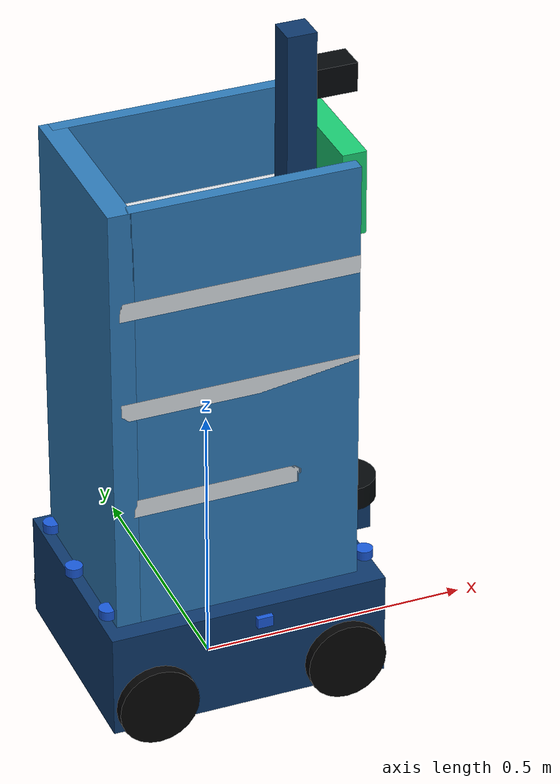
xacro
<?xml version="1.0"?>
<robot xmlns:xacro="http://www.ros.org/wiki/xacro" name="cstam_service_robot">
  <xacro:arg name="robot_length" default="0.52"/>
  <xacro:arg name="robot_width" default="0.46"/>
  <xacro:arg name="chassis_height" default="0.20"/>
  <xacro:arg name="base_clearance" default="0.025"/>
  <xacro:arg name="wheel_radius" default="0.075"/>
  <xacro:arg name="wheel_width" default="0.045"/>
  <!-- Physical wheel-center spacing used to place the four wheels. -->
  <xacro:arg name="wheel_separation" default="0.41"/>
  <!-- Empirically calibrated skid-steer track for Gazebo DiffDrive odometry. -->
  <xacro:arg name="diff_drive_wheel_separation" default="0.60"/>
  <xacro:arg name="lidar_height" default="0.27"/>
  <xacro:arg name="upper_lidar_height" default="0.82"/>
  <xacro:arg name="lidar_3d_height" default="0.92"/>
  <xacro:arg name="lidar_3d_x" default="0.24"/>
  <xacro:arg name="camera_height" default="1.12"/>
  <xacro:arg name="imu_height" default="0.72"/>

  <xacro:include filename="$(find cstam_robot)/urdf/materials.xacro"/>
  <xacro:include filename="$(find cstam_robot)/urdf/inertial_macros.xacro"/>
  <xacro:include filename="$(find cstam_robot)/urdf/cstam_robot_drivetrain.xacro"/>
  <xacro:include filename="$(find cstam_robot)/urdf/cstam_robot_core.xacro"/>
  <xacro:include filename="$(find cstam_robot)/urdf/cstam_robot_body.xacro"/>
  <xacro:include filename="$(find cstam_robot)/urdf/cstam_robot_sensors.xacro"/>
  <xacro:include filename="$(find cstam_robot)/urdf/cstam_robot_gazebo.xacro"/>

  <xacro:property name="robot_length" value="$(arg robot_length)"/>
  <xacro:property name="robot_width" value="$(arg robot_width)"/>
  <xacro:property name="chassis_height" value="$(arg chassis_height)"/>
  <xacro:property name="base_clearance" value="$(arg base_clearance)"/>
  <xacro:property name="wheel_radius" value="$(arg wheel_radius)"/>
  <xacro:property name="wheel_width" value="$(arg wheel_width)"/>
  <xacro:property name="wheel_separation" value="$(arg wheel_separation)"/>
  <xacro:property name="diff_drive_wheel_separation" value="$(arg diff_drive_wheel_separation)"/>
  <xacro:property name="wheel_y" value="${wheel_separation / 2.0}"/>

  <xacro:cstam_base
    chassis_length="${robot_length}"
    chassis_width="${robot_width - wheel_width}"
    chassis_height="${chassis_height}"
    base_clearance="${base_clearance}"
    chassis_mass="8.0"
    wheel_radius="${wheel_radius}"
    wheel_width="${wheel_width}"
    wheel_y="${wheel_y}"
    wheel_front_x="0.18"
    wheel_rear_x="-0.18"
    wheel_mass="0.45"/>

  <xacro:cstam_body
    shelf_length="0.44"
    shelf_width="0.34"
    shelf_thickness="0.035"
    shelf_1_z="0.74"
    shelf_2_z="0.54"
    shelf_3_z="0.34"
    shelf_mass="0.8"
    mast_z="0.61"
    mast_height="1.02"
    display_z="0.86"/>

  <xacro:cstam_sensors
    chassis_height="${chassis_height}"
    base_clearance="${base_clearance}"
    lidar_height="$(arg lidar_height)"
    upper_lidar_height="$(arg upper_lidar_height)"
    lidar_3d_height="$(arg lidar_3d_height)"
    lidar_3d_x="$(arg lidar_3d_x)"
    camera_height="$(arg camera_height)"
    imu_height="$(arg imu_height)"
    mast_x="0.17"
    mast_z="0.61"/>

  <xacro:cstam_gazebo
    wheel_radius="${wheel_radius}"
    effective_wheel_separation="${diff_drive_wheel_separation}"
    max_linear_speed="0.8"/>
</robot>

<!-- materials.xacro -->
<robot xmlns:xacro="http://www.ros.org/wiki/xacro">
  <material name="cstam_blue">
    <color rgba="0.05 0.22 0.42 1.0"/>
  </material>
  <material name="cstam_light_blue">
    <color rgba="0.18 0.48 0.72 1.0"/>
  </material>
  <material name="shelf_white">
    <color rgba="0.86 0.88 0.90 1.0"/>
  </material>
  <material name="rubber_black">
    <color rgba="0.015 0.015 0.018 1.0"/>
  </material>
  <material name="sensor_dark">
    <color rgba="0.015 0.03 0.04 1.0"/>
  </material>
  <material name="display_green">
    <color rgba="0.10 0.80 0.45 1.0"/>
  </material>
  <material name="ultrasonic_blue">
    <color rgba="0.10 0.35 0.85 1.0"/>
  </material>
</robot>

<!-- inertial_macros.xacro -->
<robot xmlns:xacro="http://www.ros.org/wiki/xacro">
  <xacro:macro name="box_inertia" params="mass x y z">
    <inertial>
      <mass value="${mass}"/>
      <origin xyz="0 0 0" rpy="0 0 0"/>
      <inertia
        ixx="${mass * (y*y + z*z) / 12.0}"
        ixy="0"
        ixz="0"
        iyy="${mass * (x*x + z*z) / 12.0}"
        iyz="0"
        izz="${mass * (x*x + y*y) / 12.0}"/>
    </inertial>
  </xacro:macro>

  <xacro:macro name="cylinder_inertia_y_axis" params="mass radius length">
    <inertial>
      <mass value="${mass}"/>
      <origin xyz="0 0 0" rpy="0 0 0"/>
      <inertia
        ixx="${mass * (3.0 * radius * radius + length * length) / 12.0}"
        ixy="0"
        ixz="0"
        iyy="${0.5 * mass * radius * radius}"
        iyz="0"
        izz="${mass * (3.0 * radius * radius + length * length) / 12.0}"/>
    </inertial>
  </xacro:macro>
</robot>

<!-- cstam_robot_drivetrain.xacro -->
<robot xmlns:xacro="http://www.ros.org/wiki/xacro">
  <xacro:macro name="cstam_drivetrain"
               params="chassis_height base_clearance wheel_radius wheel_width wheel_y wheel_front_x wheel_rear_x wheel_mass">
    <!-- Four-wheel skid-steer: one DiffDrive side controls two joints. -->
    <xacro:wheel name="left_front_wheel" x="${wheel_front_x}" y="${wheel_y}"
                 z="${wheel_radius - chassis_height / 2.0 - base_clearance}"
                 radius="${wheel_radius}" width="${wheel_width}" mass="${wheel_mass}"/>
    <xacro:wheel name="left_rear_wheel" x="${wheel_rear_x}" y="${wheel_y}"
                 z="${wheel_radius - chassis_height / 2.0 - base_clearance}"
                 radius="${wheel_radius}" width="${wheel_width}" mass="${wheel_mass}"/>
    <xacro:wheel name="right_front_wheel" x="${wheel_front_x}" y="${-wheel_y}"
                 z="${wheel_radius - chassis_height / 2.0 - base_clearance}"
                 radius="${wheel_radius}" width="${wheel_width}" mass="${wheel_mass}"/>
    <xacro:wheel name="right_rear_wheel" x="${wheel_rear_x}" y="${-wheel_y}"
                 z="${wheel_radius - chassis_height / 2.0 - base_clearance}"
                 radius="${wheel_radius}" width="${wheel_width}" mass="${wheel_mass}"/>
  </xacro:macro>

  <xacro:macro name="wheel" params="name x y z radius width mass">
    <link name="${name}_link">
      <visual>
        <visibility_flags>2</visibility_flags>
        <origin xyz="0 0 0" rpy="${pi / 2.0} 0 0"/>
        <geometry><cylinder radius="${radius}" length="${width}"/></geometry>
        <material name="rubber_black"/>
      </visual>
      <collision name="${name}_collision">
        <origin xyz="0 0 0" rpy="${pi / 2.0} 0 0"/>
        <geometry><cylinder radius="${radius}" length="${width}"/></geometry>
      </collision>
      <xacro:cylinder_inertia_y_axis mass="${mass}" radius="${radius}" length="${width}"/>
    </link>
    <joint name="${name}_joint" type="continuous">
      <parent link="base_link"/>
      <child link="${name}_link"/>
      <origin xyz="${x} ${y} ${z}" rpy="0 0 0"/>
      <axis xyz="0 1 0"/>
    </joint>
  </xacro:macro>
</robot>

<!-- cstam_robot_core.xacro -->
<robot xmlns:xacro="http://www.ros.org/wiki/xacro">
  <xacro:macro name="cstam_base"
               params="chassis_length chassis_width chassis_height base_clearance chassis_mass wheel_radius wheel_width wheel_y wheel_front_x wheel_rear_x wheel_mass">
    <link name="base_footprint"/>
    <joint name="base_footprint_joint" type="fixed">
      <parent link="base_footprint"/>
      <child link="base_link"/>
      <origin xyz="0 0 ${chassis_height / 2.0 + base_clearance}" rpy="0 0 0"/>
    </joint>

    <link name="base_link">
      <visual>
        <visibility_flags>2</visibility_flags>
        <geometry><box size="${chassis_length} ${chassis_width} ${chassis_height}"/></geometry>
        <material name="cstam_blue"/>
      </visual>
      <collision name="base_link_collision">
        <geometry><box size="${chassis_length} ${chassis_width} ${chassis_height}"/></geometry>
      </collision>
      <xacro:box_inertia mass="${chassis_mass}" x="${chassis_length}" y="${chassis_width}" z="${chassis_height}"/>
    </link>

    <xacro:cstam_drivetrain
      chassis_height="${chassis_height}"
      wheel_radius="${wheel_radius}"
      wheel_width="${wheel_width}"
      base_clearance="${base_clearance}"
      wheel_y="${wheel_y}"
      wheel_front_x="${wheel_front_x}"
      wheel_rear_x="${wheel_rear_x}"
      wheel_mass="${wheel_mass}"/>
  </xacro:macro>
</robot>

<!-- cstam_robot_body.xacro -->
<robot xmlns:xacro="http://www.ros.org/wiki/xacro">
  <xacro:macro name="cstam_body"
               params="shelf_length shelf_width shelf_thickness shelf_1_z shelf_2_z shelf_3_z shelf_mass mast_z mast_height display_z">
    <link name="rear_panel_link">
      <visual><visibility_flags>2</visibility_flags><geometry><box size="0.045 ${shelf_width} 0.83"/></geometry><material name="cstam_light_blue"/></visual>
      <collision><geometry><box size="0.045 ${shelf_width} 0.83"/></geometry></collision>
      <xacro:box_inertia mass="1.1" x="0.045" y="${shelf_width}" z="0.83"/>
    </link>
    <joint name="rear_panel_joint" type="fixed">
      <parent link="base_link"/><child link="rear_panel_link"/>
      <origin xyz="-0.215 0 0.515" rpy="0 0 0"/>
    </joint>

    <!-- Full-height side supports keep all three delivery shelves attached. -->
    <link name="left_shelf_support_link">
      <visual><visibility_flags>2</visibility_flags><geometry><box size="${shelf_length} 0.025 0.83"/></geometry><material name="cstam_light_blue"/></visual>
      <collision><geometry><box size="${shelf_length} 0.025 0.83"/></geometry></collision>
      <xacro:box_inertia mass="0.35" x="${shelf_length}" y="0.025" z="0.83"/>
    </link>
    <joint name="left_shelf_support_joint" type="fixed">
      <parent link="base_link"/><child link="left_shelf_support_link"/>
      <origin xyz="0 ${shelf_width / 2.0 - 0.0125} 0.515" rpy="0 0 0"/>
    </joint>

    <link name="right_shelf_support_link">
      <visual><visibility_flags>2</visibility_flags><geometry><box size="${shelf_length} 0.025 0.83"/></geometry><material name="cstam_light_blue"/></visual>
      <collision><geometry><box size="${shelf_length} 0.025 0.83"/></geometry></collision>
      <xacro:box_inertia mass="0.35" x="${shelf_length}" y="0.025" z="0.83"/>
    </link>
    <joint name="right_shelf_support_joint" type="fixed">
      <parent link="base_link"/><child link="right_shelf_support_link"/>
      <origin xyz="0 -${shelf_width / 2.0 - 0.0125} 0.515" rpy="0 0 0"/>
    </joint>

    <!-- Each shelf is fixed to the rear panel, which is fixed to the chassis. -->
    <link name="shelf_1_link">
      <visual><visibility_flags>2</visibility_flags><geometry><box size="${shelf_length} ${shelf_width} ${shelf_thickness}"/></geometry><material name="shelf_white"/></visual>
      <collision><geometry><box size="${shelf_length} ${shelf_width} ${shelf_thickness}"/></geometry></collision>
      <xacro:box_inertia mass="${shelf_mass}" x="${shelf_length}" y="${shelf_width}" z="${shelf_thickness}"/>
    </link>
    <joint name="shelf_1_joint" type="fixed">
      <parent link="rear_panel_link"/><child link="shelf_1_link"/>
      <origin xyz="0.215 0 ${shelf_1_z - 0.515}" rpy="0 0 0"/>
    </joint>

    <link name="shelf_2_link">
      <visual><visibility_flags>2</visibility_flags><geometry><box size="${shelf_length} ${shelf_width} ${shelf_thickness}"/></geometry><material name="shelf_white"/></visual>
      <collision><geometry><box size="${shelf_length} ${shelf_width} ${shelf_thickness}"/></geometry></collision>
      <xacro:box_inertia mass="${shelf_mass}" x="${shelf_length}" y="${shelf_width}" z="${shelf_thickness}"/>
    </link>
    <joint name="shelf_2_joint" type="fixed">
      <parent link="rear_panel_link"/><child link="shelf_2_link"/>
      <origin xyz="0.215 0 ${shelf_2_z - 0.515}" rpy="0 0 0"/>
    </joint>

    <link name="shelf_3_link">
      <visual><visibility_flags>2</visibility_flags><geometry><box size="${shelf_length} ${shelf_width} ${shelf_thickness}"/></geometry><material name="shelf_white"/></visual>
      <collision><geometry><box size="${shelf_length} ${shelf_width} ${shelf_thickness}"/></geometry></collision>
      <xacro:box_inertia mass="${shelf_mass}" x="${shelf_length}" y="${shelf_width}" z="${shelf_thickness}"/>
    </link>
    <joint name="shelf_3_joint" type="fixed">
      <parent link="rear_panel_link"/><child link="shelf_3_link"/>
      <origin xyz="0.215 0 ${shelf_3_z - 0.515}" rpy="0 0 0"/>
    </joint>

    <link name="sensor_mast_link">
      <visual><visibility_flags>2</visibility_flags><geometry><box size="0.055 0.055 ${mast_height}"/></geometry><material name="cstam_blue"/></visual>
      <collision><geometry><box size="0.055 0.055 ${mast_height}"/></geometry></collision>
      <xacro:box_inertia mass="0.45" x="0.055" y="0.055" z="${mast_height}"/>
    </link>
    <joint name="sensor_mast_joint" type="fixed">
      <parent link="base_link"/><child link="sensor_mast_link"/>
      <origin xyz="0.17 0 ${mast_z}" rpy="0 0 0"/>
    </joint>

    <link name="display_link">
      <visual><visibility_flags>2</visibility_flags><geometry><box size="0.045 0.28 0.16"/></geometry><material name="display_green"/></visual>
      <collision><geometry><box size="0.045 0.28 0.16"/></geometry></collision>
      <xacro:box_inertia mass="0.35" x="0.045" y="0.28" z="0.16"/>
    </link>
    <joint name="display_joint" type="fixed">
      <parent link="sensor_mast_link"/><child link="display_link"/>
      <origin xyz="0.05 0 ${display_z - mast_z}" rpy="0 0 0"/>
    </joint>
  </xacro:macro>
</robot>

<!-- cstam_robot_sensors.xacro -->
<robot xmlns:xacro="http://www.ros.org/wiki/xacro">
  <xacro:macro name="cstam_sensors" params="chassis_height base_clearance lidar_height upper_lidar_height lidar_3d_height lidar_3d_x camera_height imu_height mast_x mast_z">
    <!-- A visible pedestal connects the front LiDAR to the chassis. -->
    <link name="lidar_mount_link">
      <visual>
        <visibility_flags>2</visibility_flags>
        <geometry><box size="0.06 0.09 0.05"/></geometry>
        <material name="cstam_blue"/>
      </visual>
      <collision><geometry><box size="0.06 0.09 0.05"/></geometry></collision>
      <xacro:box_inertia mass="0.08" x="0.06" y="0.09" z="0.05"/>
    </link>
    <joint name="lidar_mount_joint" type="fixed">
      <parent link="base_link"/><child link="lidar_mount_link"/>
      <origin xyz="0.27 0 ${lidar_height - chassis_height / 2.0 - 0.0475}" rpy="0 0 0"/>
    </joint>

    <!-- The LiDAR sits directly on the pedestal. -->
    <link name="lidar_link">
      <visual><visibility_flags>2</visibility_flags><geometry><cylinder radius="0.055" length="0.045"/></geometry><material name="sensor_dark"/></visual>
      <collision><geometry><cylinder radius="0.055" length="0.045"/></geometry></collision>
      <xacro:cylinder_inertia_y_axis mass="0.12" radius="0.055" length="0.045"/>
    </link>
    <joint name="lidar_joint" type="fixed">
      <parent link="lidar_mount_link"/><child link="lidar_link"/>
      <origin xyz="0 0 0.0475" rpy="0 0 0"/>
    </joint>

    <!-- Legacy upper scan frame retained for debugging. No runtime sensor
         is attached here; Phase 1 uses the primary 3D LiDAR below. -->
    <link name="lidar_upper_link"/>
    <joint name="lidar_upper_joint" type="fixed">
      <parent link="base_link"/><child link="lidar_upper_link"/>
      <origin xyz="0.27 0 ${upper_lidar_height - chassis_height / 2.0 - base_clearance}" rpy="0 0 0"/>
    </joint>

    <!-- Primary Phase 1 multi-channel LiDAR mount. -->
    <link name="lidar_3d_link">
      <visual>
        <visibility_flags>2</visibility_flags>
        <geometry><cylinder radius="0.055" length="0.05"/></geometry>
        <material name="sensor_dark"/>
      </visual>
      <collision><geometry><cylinder radius="0.055" length="0.05"/></geometry></collision>
      <xacro:cylinder_inertia_y_axis mass="0.14" radius="0.055" length="0.05"/>
    </link>
    <joint name="lidar_3d_joint" type="fixed">
      <parent link="base_link"/><child link="lidar_3d_link"/>
      <origin xyz="${lidar_3d_x} 0 ${lidar_3d_height - chassis_height / 2.0 - base_clearance}" rpy="0 0 0"/>
    </joint>

    <link name="camera_link">
      <visual><visibility_flags>2</visibility_flags><geometry><box size="0.075 0.055 0.055"/></geometry><material name="sensor_dark"/></visual>
      <collision><geometry><box size="0.075 0.055 0.055"/></geometry></collision>
      <xacro:box_inertia mass="0.10" x="0.075" y="0.055" z="0.055"/>
    </link>
    <joint name="camera_joint" type="fixed">
      <parent link="sensor_mast_link"/><child link="camera_link"/>
      <origin xyz="${0.235 - mast_x} 0 ${camera_height - chassis_height / 2.0 - mast_z}" rpy="0 0 0"/>
    </joint>
    <link name="camera_optical_frame"/>
    <joint name="camera_optical_joint" type="fixed">
      <parent link="camera_link"/><child link="camera_optical_frame"/>
      <origin xyz="0.04 0 0" rpy="${-pi / 2.0} 0 ${-pi / 2.0}"/>
    </joint>

    <link name="imu_link">
      <visual><visibility_flags>2</visibility_flags><geometry><box size="0.035 0.035 0.018"/></geometry><material name="sensor_dark"/></visual>
      <xacro:box_inertia mass="0.04" x="0.035" y="0.035" z="0.018"/>
    </link>
    <joint name="imu_joint" type="fixed">
      <parent link="base_link"/><child link="imu_link"/>
      <origin xyz="-0.10 0 ${imu_height - chassis_height / 2.0}" rpy="0 0 0"/>
    </joint>

    <!-- Mounting points only. No synthetic ultrasonic sensor data is generated. -->
    <xacro:ultrasonic_mount name="front_left_ultrasonic" x="0.245" y="0.145" yaw="0.35"/>
    <xacro:ultrasonic_mount name="front_center_ultrasonic" x="0.255" y="0.0" yaw="0.0"/>
    <xacro:ultrasonic_mount name="front_right_ultrasonic" x="0.245" y="-0.145" yaw="-0.35"/>
    <xacro:ultrasonic_mount name="rear_left_ultrasonic" x="-0.245" y="0.145" yaw="${pi - 0.35}"/>
    <xacro:ultrasonic_mount name="rear_center_ultrasonic" x="-0.255" y="0.0" yaw="${pi}"/>
    <xacro:ultrasonic_mount name="rear_right_ultrasonic" x="-0.245" y="-0.145" yaw="${-pi + 0.35}"/>
    <!-- Side range sensors at mid-flank (see cstam_robot_gazebo.xacro). No
         collision: the base contact sensor names lumped collisions by index. -->
    <xacro:side_range_mount name="left_side_range" y="0.275" yaw="${pi / 2}"/>
    <xacro:side_range_mount name="right_side_range" y="-0.275" yaw="${-pi / 2}"/>
  </xacro:macro>

  <xacro:macro name="side_range_mount" params="name y yaw">
    <link name="${name}_link">
      <visual><visibility_flags>2</visibility_flags><geometry><box size="0.01 0.03 0.02"/></geometry><material name="ultrasonic_blue"/></visual>
      <xacro:cylinder_inertia_y_axis mass="0.01" radius="0.01" length="0.01"/>
    </link>
    <joint name="${name}_joint" type="fixed">
      <parent link="base_link"/><child link="${name}_link"/>
      <origin xyz="0.0 ${y} 0.12" rpy="0 0 ${yaw}"/>
    </joint>
  </xacro:macro>

  <xacro:macro name="ultrasonic_mount" params="name x y yaw">
    <link name="${name}_link">
      <visual><visibility_flags>2</visibility_flags><geometry><cylinder radius="0.016" length="0.018"/></geometry><material name="ultrasonic_blue"/></visual>
      <collision><geometry><cylinder radius="0.016" length="0.018"/></geometry></collision>
      <xacro:cylinder_inertia_y_axis mass="0.015" radius="0.016" length="0.018"/>
    </link>
    <joint name="${name}_joint" type="fixed">
      <parent link="base_link"/><child link="${name}_link"/>
      <origin xyz="${x} ${y} 0.12" rpy="0 0 ${yaw}"/>
    </joint>
  </xacro:macro>
</robot>
